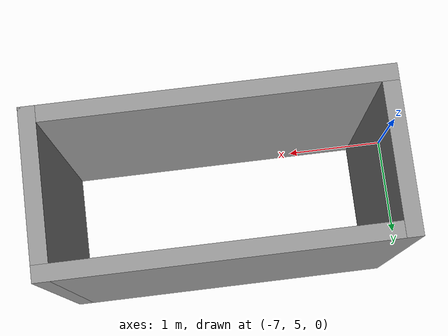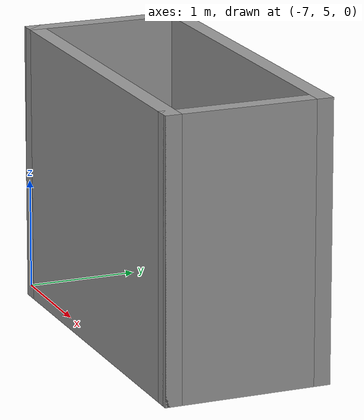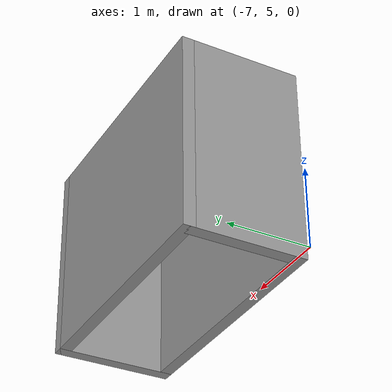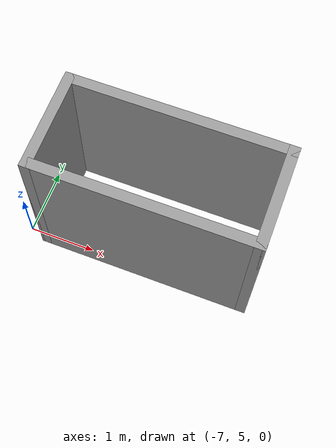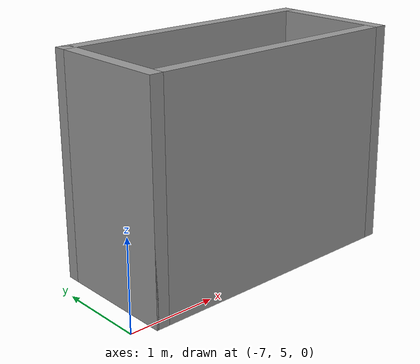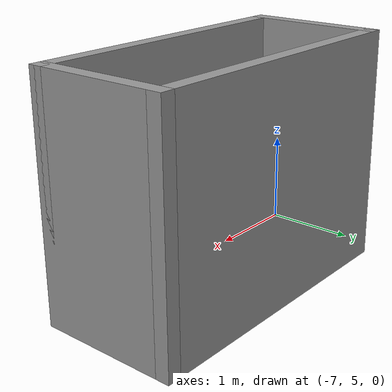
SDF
<?xml version='1.0'?>
<sdf version='1.7'>
  <model name='box'>
    <pose>-3.38897 3.19141 0 0 -0 0</pose>
    <link name='Wall_17'>
      <collision name='Wall_17_Collision'>
        <geometry>
          <box>
            <size>1.5 0.15 2.5</size>
          </box>
        </geometry>
        <pose>0 0 1.25 0 -0 0</pose>
      </collision>
      <visual name='Wall_17_Visual'>
        <pose>0 0 1.25 0 -0 0</pose>
        <geometry>
          <box>
            <size>1.5 0.15 2.5</size>
          </box>
        </geometry>
        <material>
          <script>
            <uri>file://media/materials/scripts/gazebo.material</uri>
            <name>Gazebo/Grey</name>
          </script>
          <ambient>1 1 1 1</ambient>
        </material>
        <meta>
          <layer>0</layer>
        </meta>
      </visual>
      <pose>-3.31397 2.44141 0 0 -0 -1.5708</pose>
    </link>
    <link name='Wall_18'>
      <collision name='Wall_18_Collision'>
        <geometry>
          <box>
            <size>3.25 0.15 2.5</size>
          </box>
        </geometry>
        <pose>0 0 1.25 0 -0 0</pose>
      </collision>
      <visual name='Wall_18_Visual'>
        <pose>0 0 1.25 0 -0 0</pose>
        <geometry>
          <box>
            <size>3.25 0.15 2.5</size>
          </box>
        </geometry>
        <material>
          <script>
            <uri>file://media/materials/scripts/gazebo.material</uri>
            <name>Gazebo/Grey</name>
          </script>
          <ambient>1 1 1 1</ambient>
        </material>
        <meta>
          <layer>0</layer>
        </meta>
      </visual>
      <pose>-1.76397 1.76641 0 0 -0 0</pose>
    </link>
    <link name='Wall_19'>
      <collision name='Wall_19_Collision'>
        <geometry>
          <box>
            <size>1.5 0.15 2.5</size>
          </box>
        </geometry>
        <pose>0 0 1.25 0 -0 0</pose>
      </collision>
      <visual name='Wall_19_Visual'>
        <pose>0 0 1.25 0 -0 0</pose>
        <geometry>
          <box>
            <size>1.5 0.15 2.5</size>
          </box>
        </geometry>
        <material>
          <script>
            <uri>file://media/materials/scripts/gazebo.material</uri>
            <name>Gazebo/Grey</name>
          </script>
          <ambient>1 1 1 1</ambient>
        </material>
        <meta>
          <layer>0</layer>
        </meta>
      </visual>
      <pose>-0.213972 2.44141 0 0 -0 1.5708</pose>
    </link>
    <link name='Wall_20'>
      <collision name='Wall_20_Collision'>
        <geometry>
          <box>
            <size>3.25 0.15 2.5</size>
          </box>
        </geometry>
        <pose>0 0 1.25 0 -0 0</pose>
      </collision>
      <visual name='Wall_20_Visual'>
        <pose>0 0 1.25 0 -0 0</pose>
        <geometry>
          <box>
            <size>3.25 0.15 2.5</size>
          </box>
        </geometry>
        <material>
          <script>
            <uri>file://media/materials/scripts/gazebo.material</uri>
            <name>Gazebo/Grey</name>
          </script>
          <ambient>1 1 1 1</ambient>
        </material>
        <meta>
          <layer>0</layer>
        </meta>
      </visual>
      <pose>-1.76397 3.11641 0 0 -0 3.14159</pose>
    </link>
    <static>1</static>
  </model>
</sdf>
